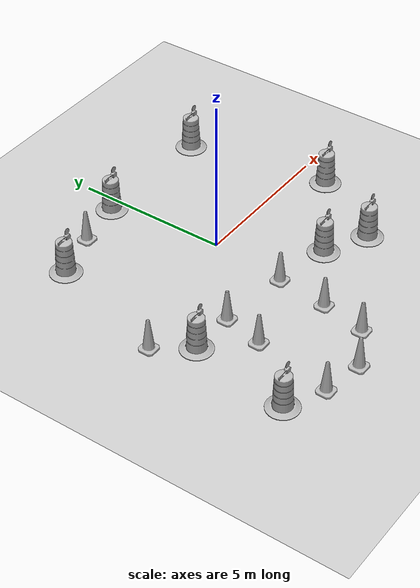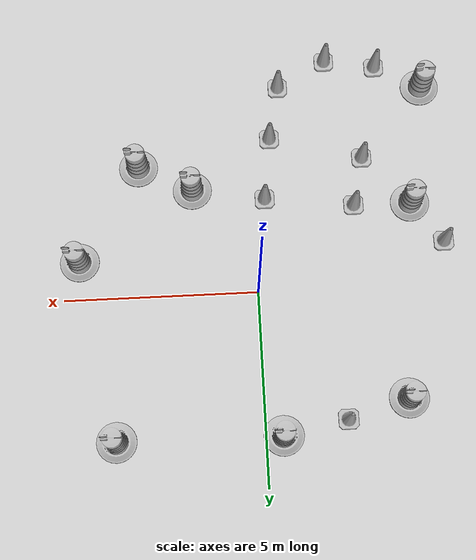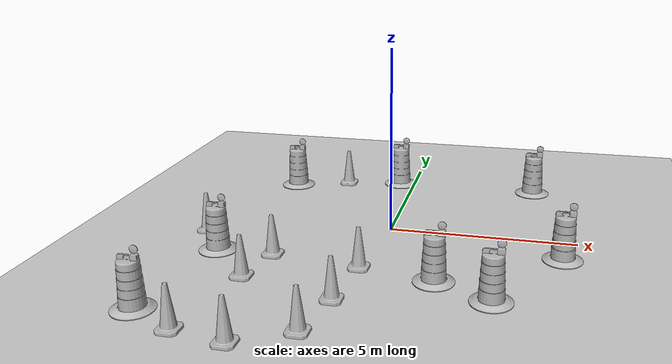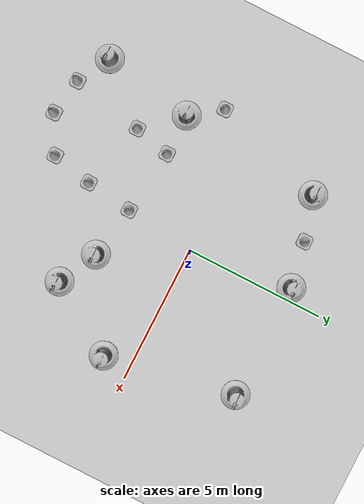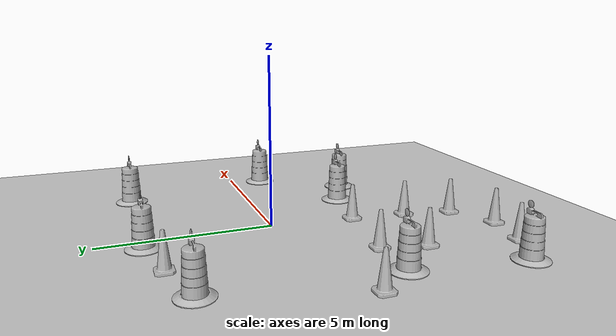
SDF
<sdf version="1.7">
 <world name="default">
  <light name="sun" type="directional">
   <pose>0 0 10 0 -0 0</pose>
   <diffuse>0.8 0.8 0.8 1</diffuse>
   <specular>0.2 0.2 0.2 1</specular>
   <attenuation>
    <range>1000</range>
    <constant>0.9</constant>
    <linear>0.01</linear>
    <quadratic>0.001</quadratic>
   </attenuation>
   <direction>-0.5 0.1 -0.9</direction>
   <spot><inner_angle>0</inner_angle><outer_angle>0</outer_angle><falloff>0</falloff></spot>
  </light>
  <model name="ground_plane">
   <static>1</static>
   <link name="link">
    <collision name="collision">
     <geometry><plane><normal>0 0 1</normal><size>100 100</size></plane></geometry>
     <surface><friction><ode><mu>100</mu><mu2>50</mu2></ode></friction></surface>
    </collision>
    <visual name="visual">
     <cast_shadows>0</cast_shadows>
     <geometry><plane><normal>0 0 1</normal><size>100 100</size></plane></geometry>
     <material>
      <script><uri>file://media/materials/scripts/gazebo.material</uri><name>Gazebo/Grey</name></script>
     </material>
    </visual>
   </link>
  </model>
  <gravity>0 0 -9.8</gravity>
  <magnetic_field>6e-06 2.3e-05 -4.2e-05</magnetic_field>
  <atmosphere type="adiabatic"/>
  <physics type="ode">
   <max_step_size>0.001</max_step_size>
   <real_time_factor>1</real_time_factor>
   <real_time_update_rate>1000</real_time_update_rate>
  </physics>
  <scene><ambient>0.4 0.4 0.4 1</ambient><background>0.7 0.7 0.7 1</background><shadows>1</shadows></scene>
  <audio><device>default</device></audio>
  <spherical_coordinates>
   <surface_model>EARTH_WGS84</surface_model>
   <latitude_deg>0</latitude_deg>
   <longitude_deg>0</longitude_deg>
   <elevation>0</elevation>
   <heading_deg>0</heading_deg>
  </spherical_coordinates>
  <model name="Construction Barrel">
   <link name="link">
    <inertial>
     <pose>0 0 0.4 0 -0 0</pose>
     <mass>500</mass>
     <inertia><ixx>51.2096</ixx><iyy>51.2096</iyy><izz>25</izz><ixy>0</ixy><ixz>0</ixz><iyz>0</iyz></inertia>
    </inertial>
    <collision name="collision">
     <geometry><mesh><uri>model://construction_barrel/meshes/construction_barrel.dae</uri></mesh></geometry>
    </collision>
    <visual name="visual">
     <geometry><mesh><uri>model://construction_barrel/meshes/construction_barrel.dae</uri></mesh></geometry>
    </visual>
   </link>
   <pose>3.72618 3.68108 1e-06 3e-06 2e-06 -2.6e-05</pose>
  </model>
  <model name="Construction Barrel_0">
   <link name="link">
    <inertial>
     <pose>0 0 0.4 0 -0 0</pose>
     <mass>500</mass>
     <inertia><ixx>51.2096</ixx><iyy>51.2096</iyy><izz>25</izz><ixy>0</ixy><ixz>0</ixz><iyz>0</iyz></inertia>
    </inertial>
    <collision name="collision">
     <geometry><mesh><uri>model://construction_barrel/meshes/construction_barrel.dae</uri></mesh></geometry>
    </collision>
    <visual name="visual">
     <geometry><mesh><uri>model://construction_barrel/meshes/construction_barrel.dae</uri></mesh></geometry>
    </visual>
   </link>
   <pose>4.5928 -1.00003 1e-06 3e-06 2e-06 -2.5e-05</pose>
  </model>
  <model name="Construction Barrel_1">
   <link name="link">
    <inertial>
     <pose>0 0 0.4 0 -0 0</pose>
     <mass>500</mass>
     <inertia><ixx>51.2096</ixx><iyy>51.2096</iyy><izz>25</izz><ixy>0</ixy><ixz>0</ixz><iyz>0</iyz></inertia>
    </inertial>
    <collision name="collision">
     <geometry><mesh><uri>model://construction_barrel/meshes/construction_barrel.dae</uri></mesh></geometry>
    </collision>
    <visual name="visual">
     <geometry><mesh><uri>model://construction_barrel/meshes/construction_barrel.dae</uri></mesh></geometry>
    </visual>
   </link>
   <pose>1.60649 -2.82849 1e-06 3e-06 2e-06 -2.3e-05</pose>
  </model>
  <model name="Construction Barrel_2">
   <link name="link">
    <inertial>
     <pose>0 0 0.4 0 -0 0</pose>
     <mass>500</mass>
     <inertia><ixx>51.2096</ixx><iyy>51.2096</iyy><izz>25</izz><ixy>0</ixy><ixz>0</ixz><iyz>0</iyz></inertia>
    </inertial>
    <collision name="collision">
     <geometry><mesh><uri>model://construction_barrel/meshes/construction_barrel.dae</uri></mesh></geometry>
    </collision>
    <visual name="visual">
     <geometry><mesh><uri>model://construction_barrel/meshes/construction_barrel.dae</uri></mesh></geometry>
    </visual>
   </link>
   <pose>-0.442494 3.70961 1e-06 3e-06 2e-06 -2.2e-05</pose>
  </model>
  <model name="Construction Cone">
   <link name="link">
    <collision name="collision">
     <geometry>
      <mesh><scale>10 10 10</scale><uri>model://construction_cone/meshes/construction_cone.dae</uri></mesh>
     </geometry>
    </collision>
    <visual name="visual">
     <geometry>
      <mesh><scale>10 10 10</scale><uri>model://construction_cone/meshes/construction_cone.dae</uri></mesh>
     </geometry>
    </visual>
    <inertial>
     <inertia><ixx>1</ixx><ixy>0</ixy><ixz>0</ixz><iyy>1</iyy><iyz>0</iyz><izz>1</izz></inertia>
     <mass>1</mass>
    </inertial>
   </link>
   <pose>-0.288458 -2.50181 -1e-06 1e-06 -2e-06 -0</pose>
  </model>
  <model name="Construction Cone_0">
   <link name="link">
    <collision name="collision">
     <geometry>
      <mesh><scale>10 10 10</scale><uri>model://construction_cone/meshes/construction_cone.dae</uri></mesh>
     </geometry>
    </collision>
    <visual name="visual">
     <geometry>
      <mesh><scale>10 10 10</scale><uri>model://construction_cone/meshes/construction_cone.dae</uri></mesh>
     </geometry>
    </visual>
    <inertial>
     <inertia><ixx>1</ixx><ixy>0</ixy><ixz>0</ixz><iyy>1</iyy><iyz>0</iyz><izz>1</izz></inertia>
     <mass>1</mass>
    </inertial>
   </link>
   <pose>-0.496581 -4.17854 -0 0 -0 0</pose>
  </model>
  <model name="Construction Cone_1">
   <link name="link">
    <collision name="collision">
     <geometry>
      <mesh><scale>10 10 10</scale><uri>model://construction_cone/meshes/construction_cone.dae</uri></mesh>
     </geometry>
    </collision>
    <visual name="visual">
     <geometry>
      <mesh><scale>10 10 10</scale><uri>model://construction_cone/meshes/construction_cone.dae</uri></mesh>
     </geometry>
    </visual>
    <inertial>
     <inertia><ixx>1</ixx><ixy>0</ixy><ixz>0</ixz><iyy>1</iyy><iyz>0</iyz><izz>1</izz></inertia>
     <mass>1</mass>
    </inertial>
   </link>
   <pose>-0.799752 -5.63657 -0 0 -0 0</pose>
  </model>
  <model name="Construction Cone_2">
   <link name="link">
    <collision name="collision">
     <geometry>
      <mesh><scale>10 10 10</scale><uri>model://construction_cone/meshes/construction_cone.dae</uri></mesh>
     </geometry>
    </collision>
    <visual name="visual">
     <geometry>
      <mesh><scale>10 10 10</scale><uri>model://construction_cone/meshes/construction_cone.dae</uri></mesh>
     </geometry>
    </visual>
    <inertial>
     <inertia><ixx>1</ixx><ixy>0</ixy><ixz>0</ixz><iyy>1</iyy><iyz>0</iyz><izz>1</izz></inertia>
     <mass>1</mass>
    </inertial>
   </link>
   <pose>-2.09753 -6.34425 -4e-06 4e-06 -1e-06 0</pose>
  </model>
  <model name="Construction Cone_3">
   <link name="link">
    <collision name="collision">
     <geometry>
      <mesh><scale>10 10 10</scale><uri>model://construction_cone/meshes/construction_cone.dae</uri></mesh>
     </geometry>
    </collision>
    <visual name="visual">
     <geometry>
      <mesh><scale>10 10 10</scale><uri>model://construction_cone/meshes/construction_cone.dae</uri></mesh>
     </geometry>
    </visual>
    <inertial>
     <inertia><ixx>1</ixx><ixy>0</ixy><ixz>0</ixz><iyy>1</iyy><iyz>0</iyz><izz>1</izz></inertia>
     <mass>1</mass>
    </inertial>
   </link>
   <pose>-3.44421 -6.11845 -0 0 -0 0</pose>
  </model>
  <model name="Construction Barrel_3">
   <link name="link">
    <inertial>
     <pose>0 0 0.4 0 -0 0</pose>
     <mass>500</mass>
     <inertia><ixx>51.2096</ixx><iyy>51.2096</iyy><izz>25</izz><ixy>0</ixy><ixz>0</ixz><iyz>0</iyz></inertia>
    </inertial>
    <collision name="collision">
     <geometry><mesh><uri>model://construction_barrel/meshes/construction_barrel.dae</uri></mesh></geometry>
    </collision>
    <visual name="visual">
     <geometry><mesh><uri>model://construction_barrel/meshes/construction_barrel.dae</uri></mesh></geometry>
    </visual>
   </link>
   <pose>3.00902 -3.52239 0 0 0 -1.5e-05</pose>
  </model>
  <model name="Construction Barrel_4">
   <link name="link">
    <inertial>
     <pose>0 0 0.4 0 -0 0</pose>
     <mass>500</mass>
     <inertia><ixx>51.2096</ixx><iyy>51.2096</iyy><izz>25</izz><ixy>0</ixy><ixz>0</ixz><iyz>0</iyz></inertia>
    </inertial>
    <collision name="collision">
     <geometry><mesh><uri>model://construction_barrel/meshes/construction_barrel.dae</uri></mesh></geometry>
    </collision>
    <visual name="visual">
     <geometry><mesh><uri>model://construction_barrel/meshes/construction_barrel.dae</uri></mesh></geometry>
    </visual>
   </link>
   <pose>-4.63528 -5.48526 -0 1e-06 -1e-06 -1.2e-05</pose>
  </model>
  <model name="Construction Cone_4">
   <link name="link">
    <collision name="collision">
     <geometry>
      <mesh><scale>10 10 10</scale><uri>model://construction_cone/meshes/construction_cone.dae</uri></mesh>
     </geometry>
    </collision>
    <visual name="visual">
     <geometry>
      <mesh><scale>10 10 10</scale><uri>model://construction_cone/meshes/construction_cone.dae</uri></mesh>
     </geometry>
    </visual>
    <inertial>
     <inertia><ixx>1</ixx><ixy>0</ixy><ixz>0</ixz><iyy>1</iyy><iyz>0</iyz><izz>1</izz></inertia>
     <mass>1</mass>
    </inertial>
   </link>
   <pose>-2.61315 -2.22728 -1e-05 -1e-06 0 0</pose>
  </model>
  <model name="Construction Cone_5">
   <link name="link">
    <collision name="collision">
     <geometry>
      <mesh><scale>10 10 10</scale><uri>model://construction_cone/meshes/construction_cone.dae</uri></mesh>
     </geometry>
    </collision>
    <visual name="visual">
     <geometry>
      <mesh><scale>10 10 10</scale><uri>model://construction_cone/meshes/construction_cone.dae</uri></mesh>
     </geometry>
    </visual>
    <inertial>
     <inertia><ixx>1</ixx><ixy>0</ixy><ixz>0</ixz><iyy>1</iyy><iyz>0</iyz><izz>1</izz></inertia>
     <mass>1</mass>
    </inertial>
   </link>
   <pose>-2.91916 -3.53301 -0 0 -1e-06 0</pose>
  </model>
  <model name="Construction Barrel_5">
   <link name="link">
    <inertial>
     <pose>0 0 0.4 0 -0 0</pose>
     <mass>500</mass>
     <inertia><ixx>51.2096</ixx><iyy>51.2096</iyy><izz>25</izz><ixy>0</ixy><ixz>0</ixz><iyz>0</iyz></inertia>
    </inertial>
    <collision name="collision">
     <geometry><mesh><uri>model://construction_barrel/meshes/construction_barrel.dae</uri></mesh></geometry>
    </collision>
    <visual name="visual">
     <geometry><mesh><uri>model://construction_barrel/meshes/construction_barrel.dae</uri></mesh></geometry>
    </visual>
   </link>
   <pose>-4.09854 -2.22544 -1e-06 3e-06 1e-05 -7e-06</pose>
  </model>
  <model name="Construction Cone_6">
   <link name="link">
    <collision name="collision">
     <geometry>
      <mesh><scale>10 10 10</scale><uri>model://construction_cone/meshes/construction_cone.dae</uri></mesh>
     </geometry>
    </collision>
    <visual name="visual">
     <geometry>
      <mesh><scale>10 10 10</scale><uri>model://construction_cone/meshes/construction_cone.dae</uri></mesh>
     </geometry>
    </visual>
    <inertial>
     <inertia><ixx>1</ixx><ixy>0</ixy><ixz>0</ixz><iyy>1</iyy><iyz>0</iyz><izz>1</izz></inertia>
     <mass>1</mass>
    </inertial>
   </link>
   <pose>-4.89309 -1.13919 -5e-06 -4e-06 1e-06 0</pose>
  </model>
  <model name="Construction Cone_7">
   <link name="link">
    <collision name="collision">
     <geometry>
      <mesh><scale>10 10 10</scale><uri>model://construction_cone/meshes/construction_cone.dae</uri></mesh>
     </geometry>
    </collision>
    <visual name="visual">
     <geometry>
      <mesh><scale>10 10 10</scale><uri>model://construction_cone/meshes/construction_cone.dae</uri></mesh>
     </geometry>
    </visual>
    <inertial>
     <inertia><ixx>1</ixx><ixy>0</ixy><ixz>0</ixz><iyy>1</iyy><iyz>0</iyz><izz>1</izz></inertia>
     <mass>1</mass>
    </inertial>
   </link>
   <pose>-2.07977 3.37999 -0 0 -0 0</pose>
  </model>
  <model name="Construction Barrel_6">
   <link name="link">
    <inertial>
     <pose>0 0 0.4 0 -0 0</pose>
     <mass>500</mass>
     <inertia><ixx>51.2096</ixx><iyy>51.2096</iyy><izz>25</izz><ixy>0</ixy><ixz>0</ixz><iyz>0</iyz></inertia>
    </inertial>
    <collision name="collision">
     <geometry><mesh><uri>model://construction_barrel/meshes/construction_barrel.dae</uri></mesh></geometry>
    </collision>
    <visual name="visual">
     <geometry><mesh><uri>model://construction_barrel/meshes/construction_barrel.dae</uri></mesh></geometry>
    </visual>
   </link>
   <pose>-3.64233 2.91629 -1e-06 3e-06 -2e-06 -2e-06</pose>
  </model>
 </world>
</sdf>
